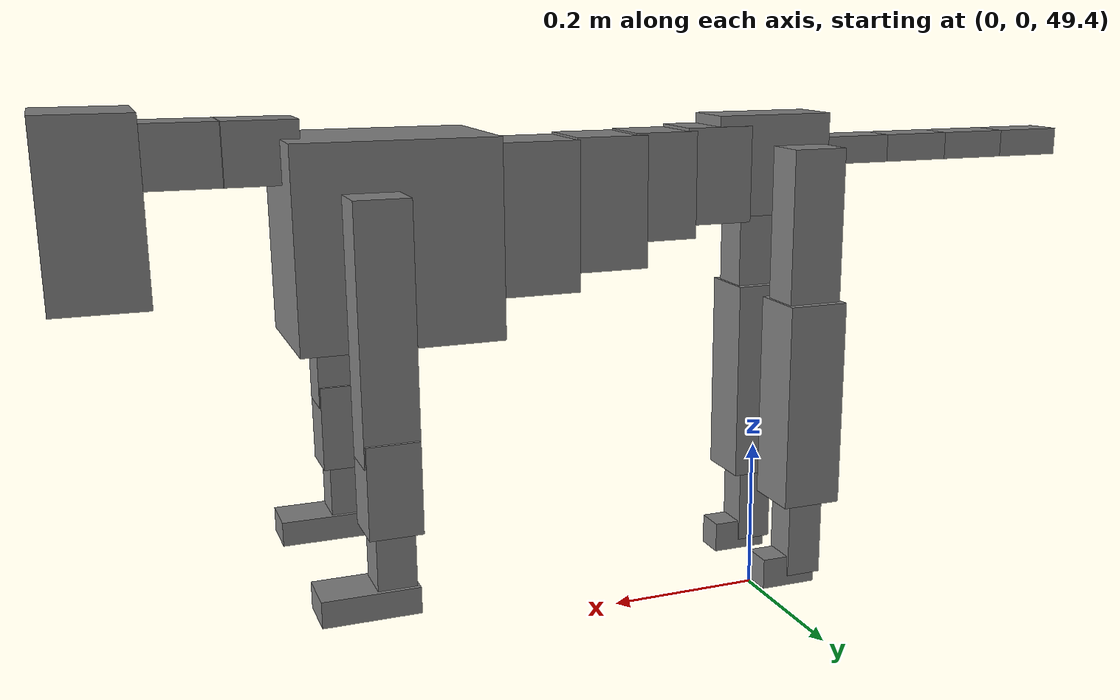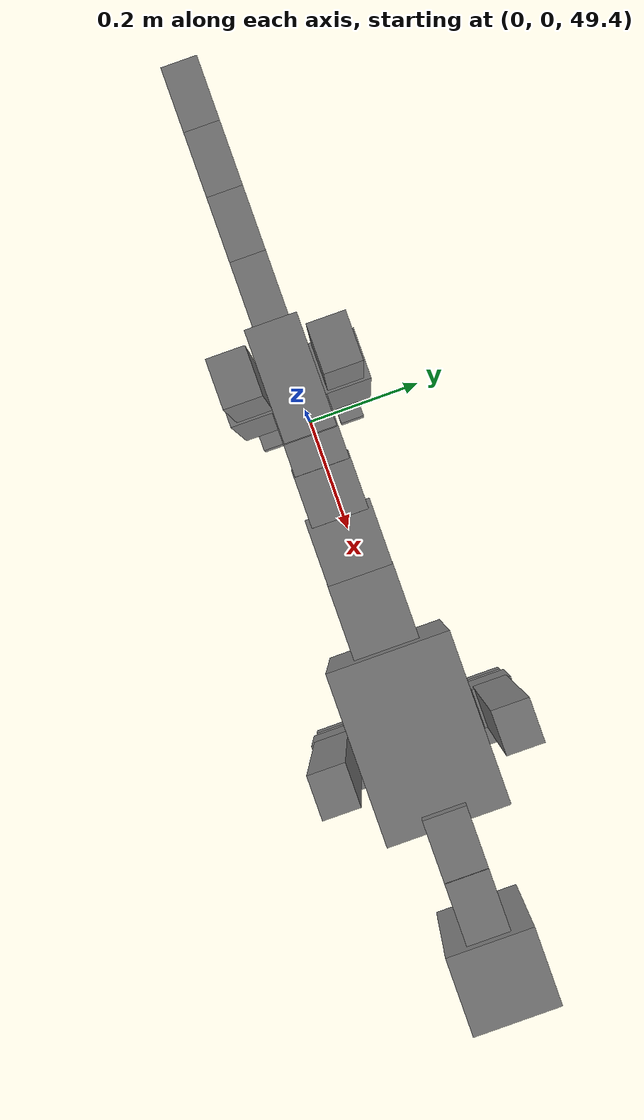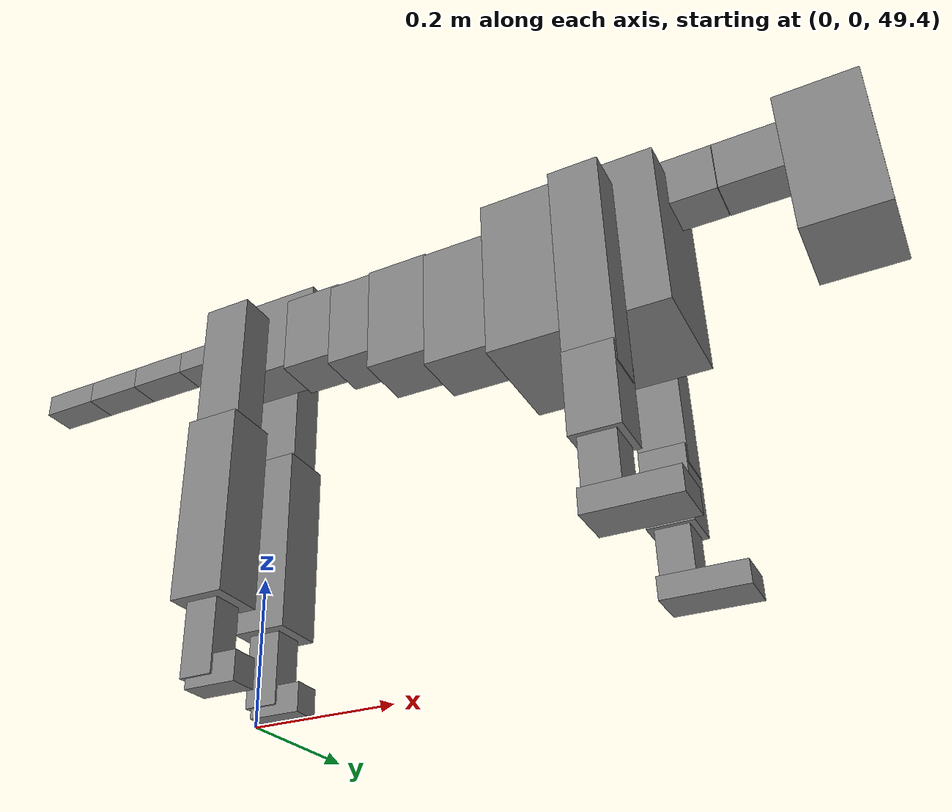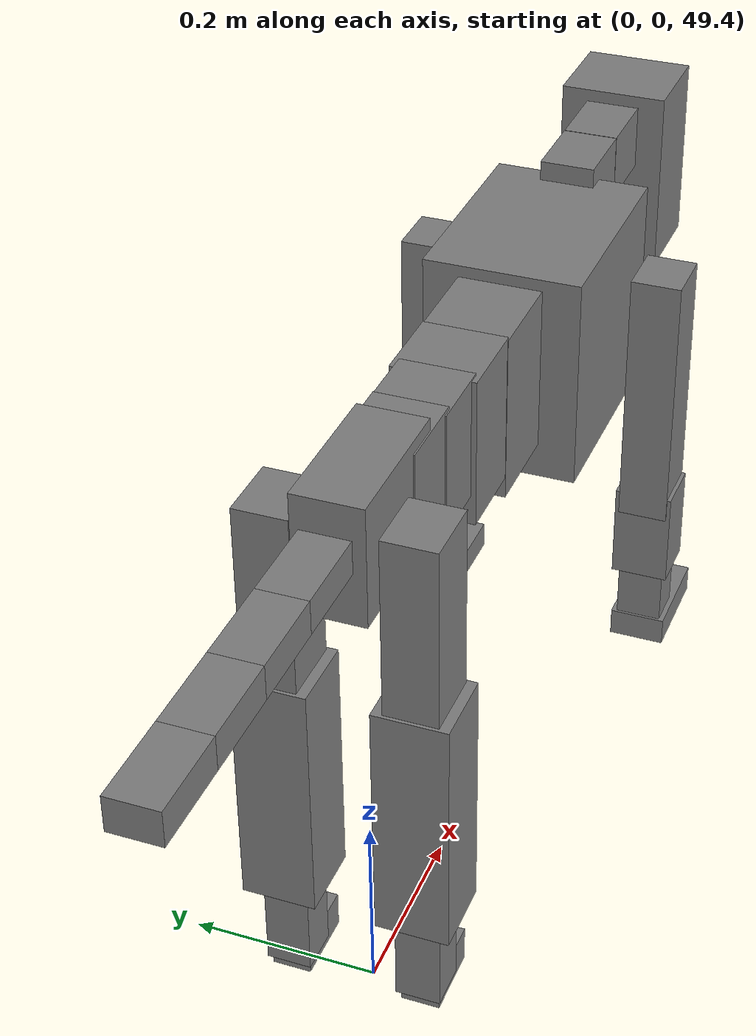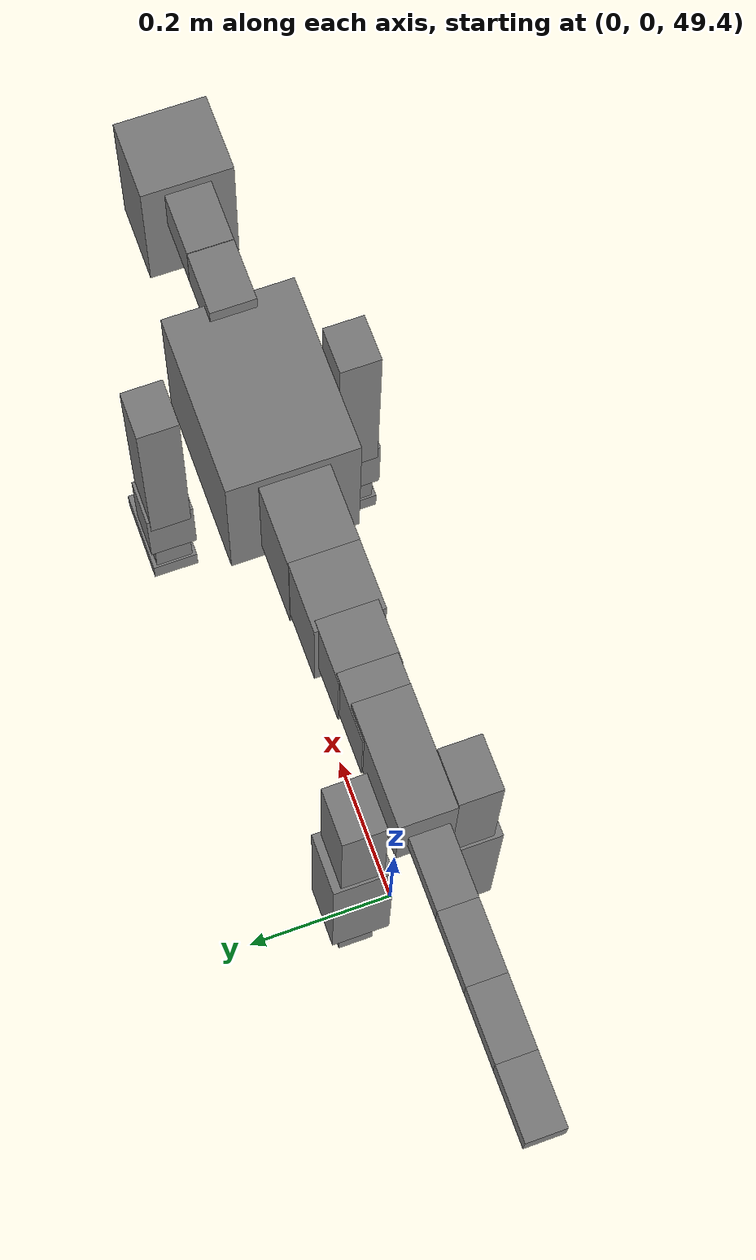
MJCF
<mujoco model="dog">

    <default>
        <joint armature="0.02" stiffness="1" damping="0.2" limited="true"/>
        <geom condim="3" friction="1 0.05 0.05" margin="0.01"/>
        <motor ctrllimited="true" ctrlrange="-1.0 1.0" forcelimited="true" gear="50"/>
    </default>

    <compiler inertiafromgeom="true" angle="radian"/>

    <option timestep="0.016" iterations="50" tolerance="1e-10" solver="Newton" jacobian="dense" cone="pyramidal"/>

    <size nconmax="20000" njmax="60000" nstack="5000000"/>
    <visual>
        <map force="0.1" zfar="30"/>
        <rgba haze="0.15 0.25 0.35 1"/>
        <quality shadowsize="2048"/>
        <global offwidth="800" offheight="800"/>
    </visual>

    <asset>
        <texture type="skybox" builtin="gradient" rgb1="0.3 0.5 0.7" rgb2="0 0 0" width="512" height="512"/>
        <texture name="texplane" type="2d" builtin="checker" rgb1=".2 .3 .4" rgb2=".1 0.15 0.2" width="512" height="512"
                 mark="cross" markrgb=".8 .8 .8"/>
        <texture name="texgeom" type="cube" builtin="flat" mark="cross" width="127" height="1278" rgb1="0.8 0.6 0.4"
                 rgb2="0.8 0.6 0.4" markrgb="1 1 1" random="0.01"/>

        <material name="matplane" reflectance="0.3" texture="texplane" texrepeat="1 1" texuniform="true"/>
        <material name="matgeom" texture="texgeom" texuniform="true" rgba="0.8 0.6 .4 1"/>
    </asset>

    <worldbody>
        <geom name="floor" pos="0 0 0" size="0 0 .25" type="plane" material="matplane" condim="3"/>

        <light directional="false" diffuse=".2 .2 .2" specular="0 0 0" pos="0 0 5" dir="0 0 -1" castshadow="false"/>
        <light mode="targetbodycom" target="torso" directional="false" diffuse=".8 .8 .8" specular="0.3 0.3 0.3"
               pos="0 0 4.0" dir="0 0 -1"/>

        <body name="root" pos="0 0 50">
            <freejoint name="root_1"/>
            <geom type="box" pos="0 0 -0.02" size="0.0774  0.0358  0.063" density="2030"/>

            <body name="spine1" pos="0.054 0 0">
                <joint name="spine1_y" axis="0 1 0" range="0 0.7" limited="true"/>
                <geom type="box" pos="0.02375 0 -0.03" size="0.04375  0.0375  0.05985" density="2030"/>

                <body name="spine2" pos="0.0612 0 0">
                    <joint name="spine2_y" axis="0 1 0" range="-0.15 0.15" limited="true"/>
                    <geom type="box" pos="0.03555  0  -0.04" size="0.04055  0.039  0.06615" density="2030"/>

                    <body name="spine3" pos="0.0730 0 0">
                        <joint name="spine3_y" axis="0 1 0" range="-0.15 0.15" limited="true"/>
                        <geom type="box" pos="0.03555  0  -0.057" size="0.04555  0.0445  0.081" density="2030"/>

                        <body name="spine4" pos="0.0780 0 0">
                            <joint name="spine4_y" axis="0 1 0" range="-0.15 0.15" limited="true"/>
                            <geom type="box" pos="0.05265  0  -0.07" size="0.05265  0.045  0.09135" density="2030"/>

                            <body name="torso" pos="0.1082 0 0">
                                <joint name="torso_y" axis="0 1 0" range="-0.15 0.15" limited="true"/>
                                <geom type="box" pos="0.11925  0  -0.085" size="0.11925  0.085  0.11745"
                                      density="2030"/>

                                <body name="neck1" pos="0.2160  0   0.0180">
                                    <joint name="neck1_y" axis="0 1 0" range="-1.2  -1" limited="true"/>
                                    <geom type="box" pos="0.0423  0  0" size="0.0423  0.03  0.036" density="2325"/>

                                    <body name="neck2" pos="0.0853  0  0">
                                        <joint name="neck2_y" axis="0 1 0" range="0.1  0" limited="true"/>
                                        <geom type="box" pos="0.0423  0  0" size="0.0423  0.03  0.036" density="2325"/>

                                        <body name="head" pos="0.0853  0  0">
                                            <joint name="head_y" axis="0 1 0" range="-0.3  -0.2" limited="true"/>
                                            <geom type="box" pos="0.0531  0  -0.055" size="0.0531  0.06  0.1044"
                                                  density="4030"/>

                                        </body>
                                    </body>
                                </body>

                                <body name="front_shoulder" pos="0.156  0   -0.0480">
                                    <joint name="front_shoulder_y" axis="0 1 0" range="-1 1.5" limited="true"/>
                                    <geom type="box" pos="0 0.13 -0.1205" size="0.0320  0.0274  0.1471" density="1158"/>
                                    <geom type="box" pos="0 -0.13 -0.1205" size="0.0320  0.0274  0.1471"
                                          density="1158"/>

                                    <body name="front_elbow" pos="0  0  -0.2409">
                                        <joint name="front_elbow_y" axis="0 1 0" range="-2 0" limited="true"/>
                                        <geom type="box" pos="0 0.13 -0.0541" size="0.0310  0.0317  0.0541"
                                              density="1081"/>
                                        <geom type="box" pos="0 -0.13 -0.0541" size="0.0310  0.0317  0.0541"
                                              density="1081"/>

                                        <body name="front_wrist" pos="0  0  -0.1082">
                                            <joint name="front_wrist_y" axis="0 1 0" range="-0.2 0" limited="true"/>
                                            <geom type="box" pos="0 0.13 -0.0392" size="0.0227  0.0253  0.0523"
                                                  density="1664"/>
                                            <geom type="box" pos="0 -0.13 -0.0392" size="0.0227  0.0253  0.0523"
                                                  density="1664"/>

                                            <body name="front_finger_end" pos="0  0  -0.0783">
                                                <joint name="front_finger_y" axis="0 1 0" range="-0.4 1"
                                                       limited="true"/>
                                                <geom type="box" pos="0.0309  0.13  -0.0007"
                                                      size="0.0566  0.0309  0.0157" density="1515"/>
                                                <geom type="box" pos="0.0309  -0.13  -0.0007"
                                                      size="0.0566  0.0309  0.0157" density="1515"/>

                                            </body>

                                        </body>
                                    </body>
                                </body>

                            </body>
                        </body>
                    </body>
                </body>
            </body>

            <body name="back_hip" pos="-0.03 0 -0.018">
                <joint name="back_hip_y" axis="0 1 0" range="-1.5 0.3" limited="true"/>
                <geom type="box" pos="0 0.07 -0.0932" size="0.0353  0.0277  0.1160" density="1154"/>
                <geom type="box" pos="0 -0.07 -0.0932" size="0.0353  0.0277  0.1160" density="1154"/>

                <body name="back_knee" pos="0  0  -0.1864">
                    <joint name="back_knee_y" axis="0 1 0" range="0 2.8" limited="true"/>
                    <geom type="box" pos="0 0.07 -0.1171" size="0.0390  0.0385  0.1327" density="1227"/>
                    <geom type="box" pos="0 -0.07 -0.1171" size="0.0390  0.0385  0.1327" density="1227"/>

                    <body name="back_ankle" pos="0  0  -0.2342">
                        <joint name="back_ankle_y" axis="0 1 0" range="-2.2 0" limited="true"/>
                        <geom type="box" pos="0 0.07 -0.0530" size="0.0234  0.0234  0.0642" density="1284"/>
                        <geom type="box" pos="0 -0.07 -0.0530" size="0.0234  0.0234  0.0642" density="1284"/>

                        <body name="back_toe_end" pos="0  0  -0.1059">
                            <joint name="back_toe_y" axis="0 1 0" range="-0.4 1" limited="true"/>
                            <geom type="box" pos="0.0203  0.07  -0.0051" size="0.0371  0.0203  0.0201" density="1515"/>
                            <geom type="box" pos="0.0203  -0.07  -0.0051" size="0.0371  0.0203  0.0201" density="1515"/>

                        </body>
                    </body>
                </body>
            </body>

            <body name="tail1" pos="-0.074 0 -0.006">
                <joint name="tail1_y" axis="0 1 0" range="-0.2 0.2" limited="true"/>
                <geom type="box" pos="-0.0536  0  0" size="0.045  0.025  0.0175" density="1587"/>

                <body name="tail2" pos="-0.09 0 0">
                    <joint name="tail2_y" axis="0 1 0" range="-0.2 0.2" limited="true"/>
                    <geom type="box" pos="-0.0536  0  0" size="0.045  0.025  0.0175" density="1587"/>

                    <body name="tail3" pos="-0.09 0 0">
                        <joint name="tail3_y" axis="0 1 0" range="-0.2 0.2" limited="true"/>
                        <geom type="box" pos="-0.0536  0  0" size="0.045  0.025  0.0175" density="1587"/>

                        <body name="tail4" pos="-0.09 0 0">
                            <joint name="tail4_y" axis="0 1 0" range="-0.2 0.2" limited="true"/>
                            <geom type="box" pos="-0.0536  0  0" size="0.045  0.025  0.0175" density="1587"/>

                        </body>
                    </body>
                </body>
            </body>
        </body>
    </worldbody>

    <actuator>
        <motor joint="spine1_y" forcerange="-150 150     "/>
        <motor joint="spine2_y" forcerange="-150 150     "/>
        <motor joint="spine3_y" forcerange="-150 150     "/>
        <motor joint="spine4_y" forcerange="-150 150     "/>
        <motor joint="torso_y" forcerange="-150 150     "/>
        <motor joint="neck1_y" forcerange="-100 100       "/>
        <motor joint="neck2_y" forcerange="-100 100       "/>
        <motor joint="head_y" forcerange="-150 150       "/>
        <motor joint="front_shoulder_y" forcerange="-151.93 130.52"/>
        <motor joint="front_elbow_y" forcerange="-136.86 193.60"/>
        <motor joint="front_wrist_y" forcerange="-118.26 83.87"/>
        <motor joint="front_finger_y" forcerange="-58.77 66.03"/>
        <motor joint="back_hip_y" forcerange="-289.80 279.75"/>
        <motor joint="back_knee_y" forcerange="-393.65 365.80"/>
        <motor joint="back_angle_y" forcerange="-60.98 213.81"/>
        <motor joint="back_toe_y" forcerange="-42.99 39.09"/>
        <motor joint="tail1_y" forcerange="-50 50     "/>
        <motor joint="tail2_y" forcerange="-50 50     "/>
        <motor joint="tail3_y" forcerange="-50 50     "/>
        <motor joint="tail4_y" forcerange="-50 50     "/>
    </actuator>
</mujoco>
